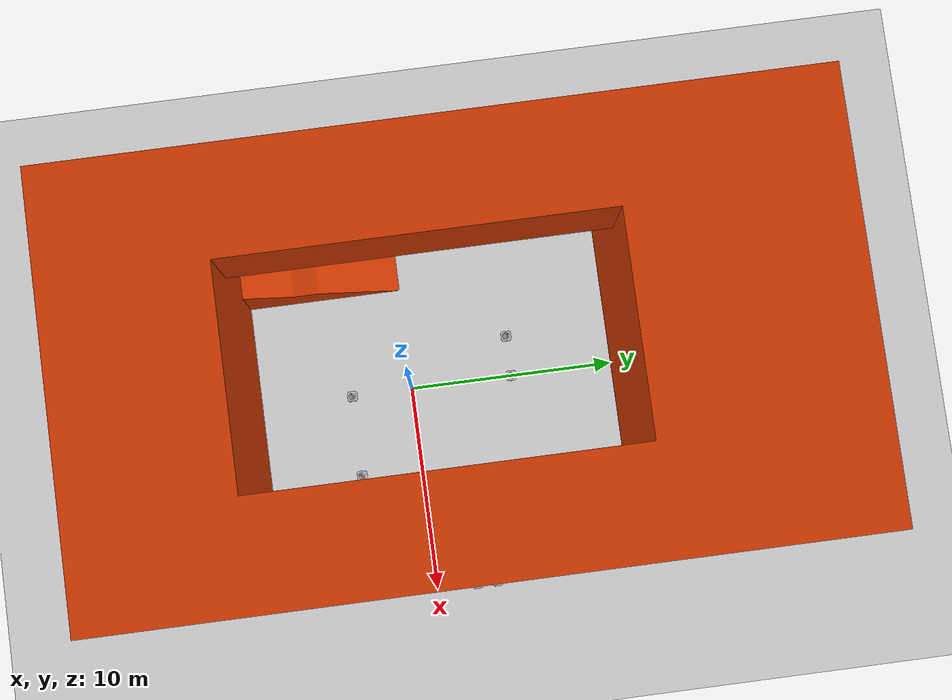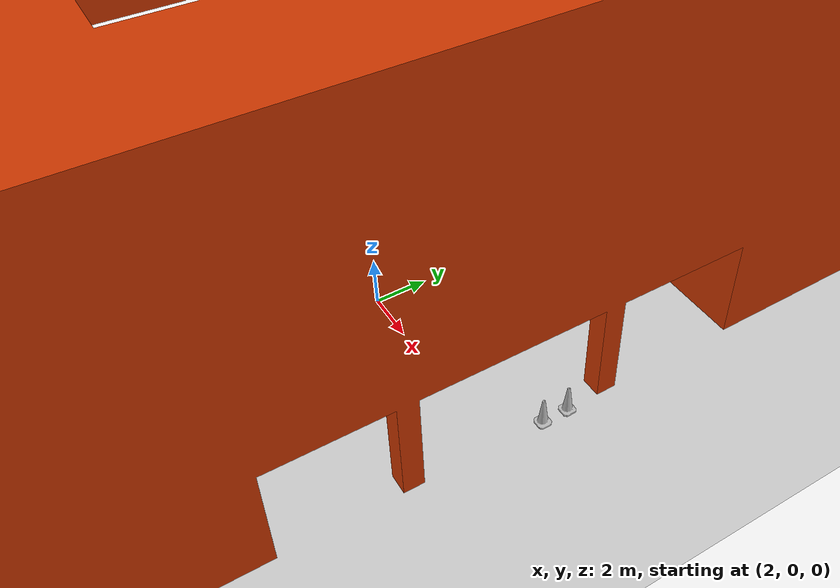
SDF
<?xml version="1.0" ?>
<sdf version="1.4">
 <world name="default">
    <light name='sun' type='directional'>
      <cast_shadows>1</cast_shadows>
      <pose frame=''>0 0 10 0 -0 0</pose>
      <diffuse>0.8 0.8 0.8 1</diffuse>
      <specular>0.2 0.2 0.2 1</specular>
      <attenuation>
        <range>1000</range>
        <constant>0.9</constant>
        <linear>0.01</linear>
        <quadratic>0.001</quadratic>
      </attenuation>
      <direction>-0.5 0.1 -0.9</direction>
    </light>

    <model name='ground_plane'>
      <static>1</static>
      <link name='link'>
        <collision name='collision'>
          <geometry>
            <plane>
              <normal>0 0 1</normal>
              <size>200 200</size>
            </plane>
          </geometry>
          <surface>
            <friction>
              <ode>
                <mu>100</mu>
                <mu2>50</mu2>
              </ode>
              <torsional>
                <ode/>
              </torsional>
            </friction>
            <contact>
              <ode/>
            </contact>
            <bounce/>
          </surface>
          <max_contacts>10</max_contacts>
        </collision>
        <visual name='visual'>
          <cast_shadows>0</cast_shadows>
          <geometry>
            <plane>
              <normal>0 0 1</normal>
              <size>100 100</size>
            </plane>
          </geometry>
          <material>
            <script>
              <uri>file://media/materials/scripts/gazebo.material</uri>
              <name>Gazebo/Grey</name>
            </script>
          </material>
        </visual>
        <self_collide>0</self_collide>
        <kinematic>0</kinematic>
      </link>
    </model>

    <physics type='ode'>
      <max_step_size>0.001</max_step_size>
      <real_time_factor>1</real_time_factor>
      <real_time_update_rate>1000</real_time_update_rate>
      <gravity>0 0 -9.8</gravity>
    </physics>

    <include>
      <static>1</static>
      <uri>model://ISCAS_building</uri>
      <pose>-10 20 0 0 0 0</pose>
    </include>

    <include>
      <name>construction_cone_0</name>
      <uri>model://construction_cone</uri>
      <pose>-2 5 0 0 0 0</pose>
    </include>

    <include>
      <name>construction_cone_1</name>
      <uri>model://construction_cone</uri>
      <pose>0 5 0 0 0 0</pose>
    </include>

    <include>
      <name>construction_cone_2</name>
      <uri>model://construction_cone</uri>
      <pose>4 -3 0 0 0 0</pose>
    </include>

    <include>
      <name>construction_cone_3</name>
      <uri>model://construction_cone</uri>
      <pose>0 -3 0 0 0 0</pose>
    </include>

    <include>
      <name>construction_cone_4</name>
      <uri>model://construction_cone</uri>
      <pose>10 2 0 0 0 0</pose>
    </include>

    <include>
      <name>construction_cone_5</name>
      <uri>model://construction_cone</uri>
      <pose>10 3 0 0 0 0</pose>
    </include>

  </world>
</sdf>

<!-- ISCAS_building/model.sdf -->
<sdf version="1.5">
  <model name="ISCAS_building">
    <link name="link">
      <collision name="collision">
        <geometry>
          <mesh>
            <uri>model://ISCAS_building/meshes/ISCAS_building.dae</uri>
            <scale>0.5 0.5 0.5</scale>
          </mesh>
        </geometry>
      </collision>
      <visual name="visual">
        <geometry>
          <mesh>
            <uri>model://ISCAS_building/meshes/ISCAS_building.dae</uri>
            <scale>0.5 0.5 0.5</scale>
          </mesh>
        </geometry>
      </visual>
    </link>
  </model>
</sdf>

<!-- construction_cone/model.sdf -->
<sdf version="1.5">
  <model name="Construction Cone">
    <link name="link">
      <collision name="collision">
        <geometry>
          <mesh>
            <scale>10 10 10</scale>
            <uri>file://isr-testbed/construction_cone/meshes/construction_cone.dae</uri>
          </mesh>
        </geometry>
      </collision>
      <visual name="visual">
        <geometry>
          <mesh>
            <scale>10 10 10</scale>
            <uri>file://isr-testbed/construction_cone/meshes/construction_cone.dae</uri>
          </mesh>
        </geometry>
      </visual>
    </link>
  </model>
</sdf>
